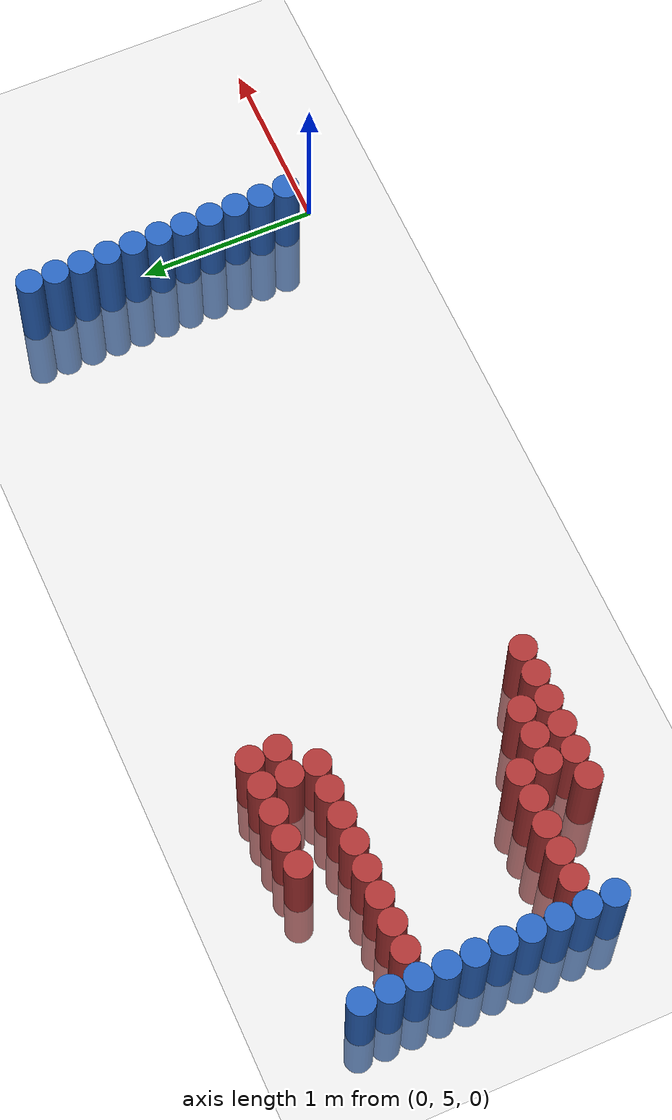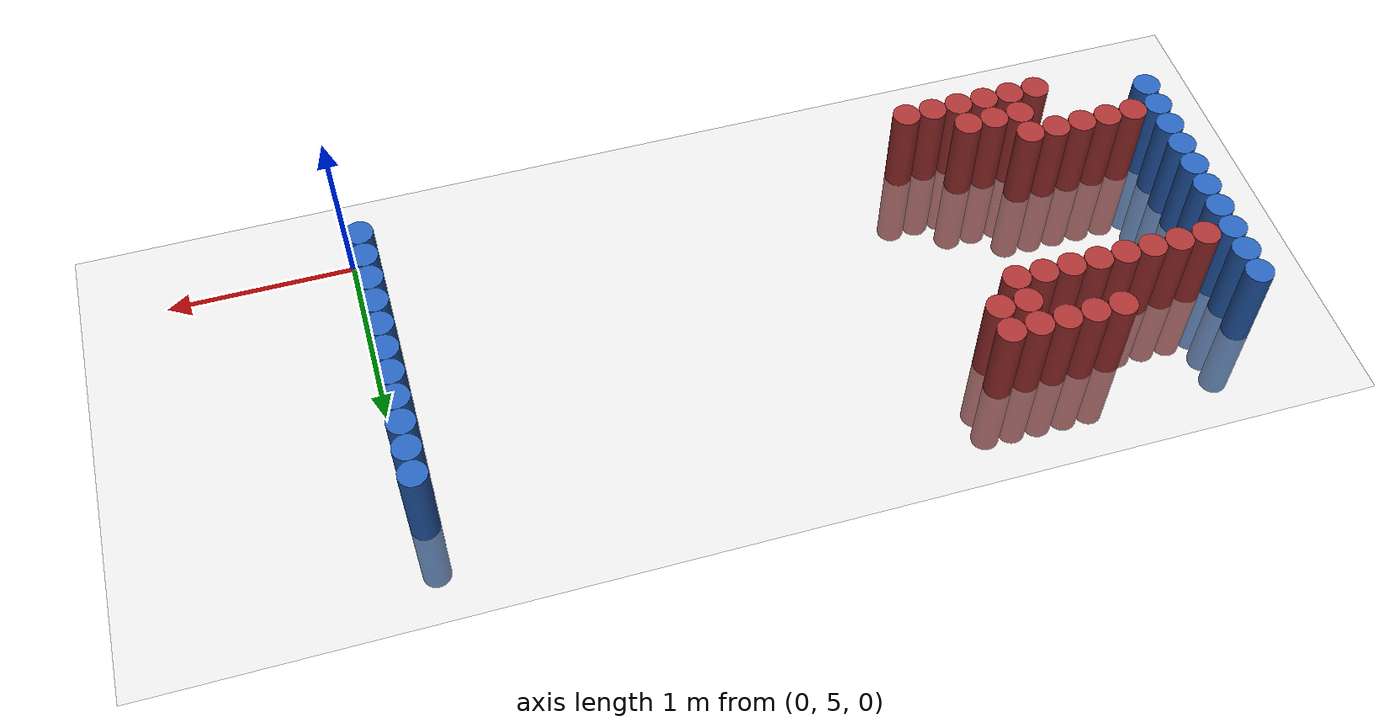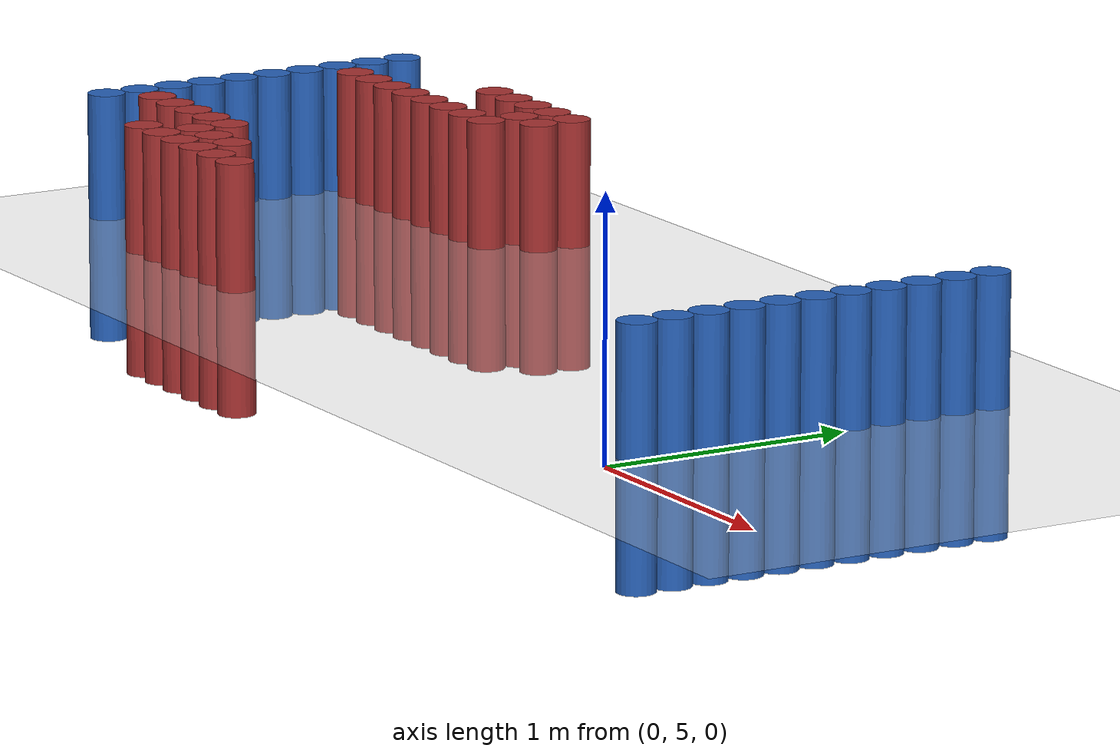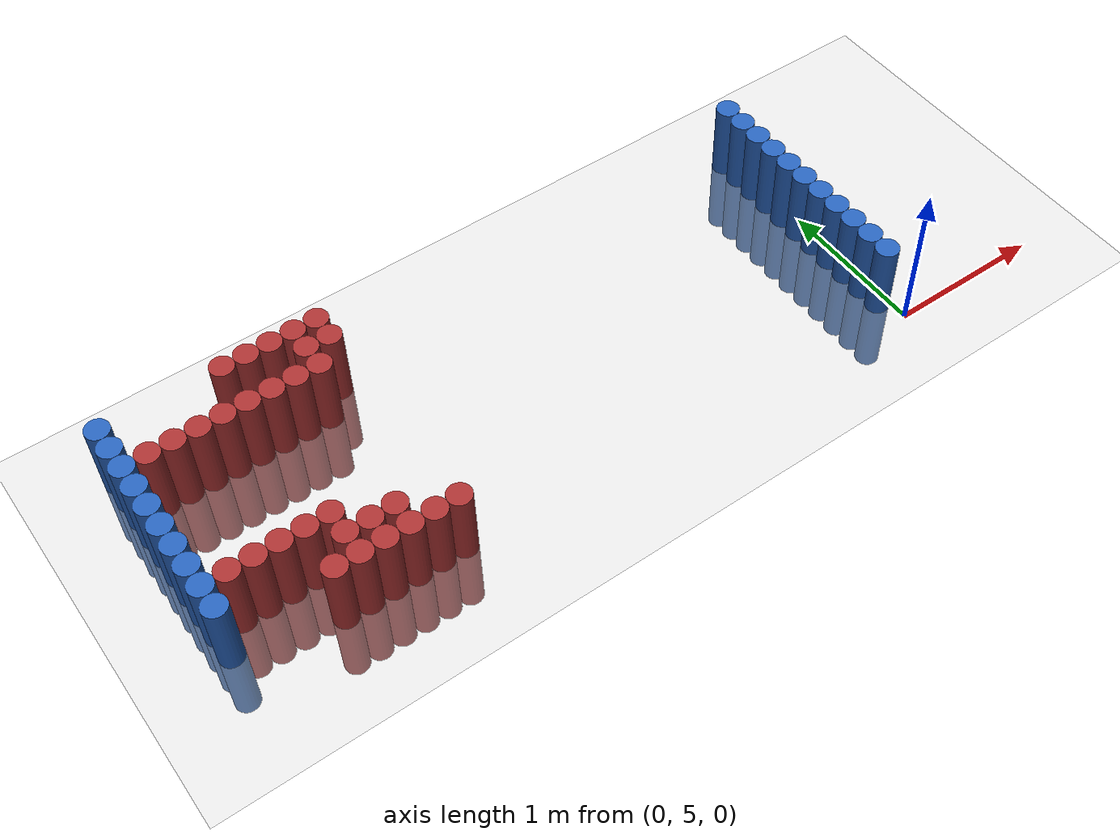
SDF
<sdf version="1.6">
 <world name="default">
  <model name="ground_plane">
   <static>1</static>
   <link name="link">
    <collision name="collision">
     <geometry><plane><normal>0 0 1</normal><size>100 100</size></plane></geometry>
     <surface><friction><ode><mu>100</mu><mu2>50</mu2></ode></friction></surface>
    </collision>
    <visual name="visual">
     <cast_shadows>0</cast_shadows>
     <geometry><plane><normal>0 0 1</normal><size>100 100</size></plane></geometry>
     <material>
      <script><uri>file://media/materials/scripts/gazebo.material</uri><name>Gazebo/Grey</name></script>
     </material>
    </visual>
   </link>
  </model>
  <model name="unit_cylinder_97">
   <static>1</static>
   <pose>-4.425000 5.325000 0.000000 0.000000 0.000000 0.000000</pose>
   <link name="link">
    <inertial>
     <mass>1</mass>
     <inertia><ixx>0.145833</ixx><ixy>0</ixy><ixz>0</ixz><iyy>0.145833</iyy><iyz>0</iyz><izz>0.125</izz></inertia>
    </inertial>
    <collision name="collision">
     <geometry><cylinder><radius>0.075000</radius><length>1</length></cylinder></geometry>
    </collision>
    <visual name="visual">
     <geometry><cylinder><radius>0.075000</radius><length>1</length></cylinder></geometry>
     <material>
      <ambient>0.152000 0.379000 0.720000 1</ambient>
      <diffuse>0.152000 0.379000 0.720000 1</diffuse>
     </material>
     <material>
      <script><name>Gazebo/Grey</name><uri>file://media/materials/scripts/gazebo.material</uri></script>
     </material>
    </visual>
   </link>
  </model>
  <model name="unit_cylinder_98">
   <static>1</static>
   <pose>-4.425000 5.475000 0.000000 0.000000 0.000000 0.000000</pose>
   <link name="link">
    <inertial>
     <mass>1</mass>
     <inertia><ixx>0.145833</ixx><ixy>0</ixy><ixz>0</ixz><iyy>0.145833</iyy><iyz>0</iyz><izz>0.125</izz></inertia>
    </inertial>
    <collision name="collision">
     <geometry><cylinder><radius>0.075000</radius><length>1</length></cylinder></geometry>
    </collision>
    <visual name="visual">
     <geometry><cylinder><radius>0.075000</radius><length>1</length></cylinder></geometry>
     <material>
      <ambient>0.152000 0.379000 0.720000 1</ambient>
      <diffuse>0.152000 0.379000 0.720000 1</diffuse>
     </material>
     <material>
      <script><name>Gazebo/Grey</name><uri>file://media/materials/scripts/gazebo.material</uri></script>
     </material>
    </visual>
   </link>
  </model>
  <model name="unit_cylinder_99">
   <static>1</static>
   <pose>-4.425000 5.625000 0.000000 0.000000 0.000000 0.000000</pose>
   <link name="link">
    <inertial>
     <mass>1</mass>
     <inertia><ixx>0.145833</ixx><ixy>0</ixy><ixz>0</ixz><iyy>0.145833</iyy><iyz>0</iyz><izz>0.125</izz></inertia>
    </inertial>
    <collision name="collision">
     <geometry><cylinder><radius>0.075000</radius><length>1</length></cylinder></geometry>
    </collision>
    <visual name="visual">
     <geometry><cylinder><radius>0.075000</radius><length>1</length></cylinder></geometry>
     <material>
      <ambient>0.152000 0.379000 0.720000 1</ambient>
      <diffuse>0.152000 0.379000 0.720000 1</diffuse>
     </material>
     <material>
      <script><name>Gazebo/Grey</name><uri>file://media/materials/scripts/gazebo.material</uri></script>
     </material>
    </visual>
   </link>
  </model>
  <model name="unit_cylinder_100">
   <static>1</static>
   <pose>-4.425000 5.775000 0.000000 0.000000 0.000000 0.000000</pose>
   <link name="link">
    <inertial>
     <mass>1</mass>
     <inertia><ixx>0.145833</ixx><ixy>0</ixy><ixz>0</ixz><iyy>0.145833</iyy><iyz>0</iyz><izz>0.125</izz></inertia>
    </inertial>
    <collision name="collision">
     <geometry><cylinder><radius>0.075000</radius><length>1</length></cylinder></geometry>
    </collision>
    <visual name="visual">
     <geometry><cylinder><radius>0.075000</radius><length>1</length></cylinder></geometry>
     <material>
      <ambient>0.152000 0.379000 0.720000 1</ambient>
      <diffuse>0.152000 0.379000 0.720000 1</diffuse>
     </material>
     <material>
      <script><name>Gazebo/Grey</name><uri>file://media/materials/scripts/gazebo.material</uri></script>
     </material>
    </visual>
   </link>
  </model>
  <model name="unit_cylinder_101">
   <static>1</static>
   <pose>-4.425000 5.925000 0.000000 0.000000 0.000000 0.000000</pose>
   <link name="link">
    <inertial>
     <mass>1</mass>
     <inertia><ixx>0.145833</ixx><ixy>0</ixy><ixz>0</ixz><iyy>0.145833</iyy><iyz>0</iyz><izz>0.125</izz></inertia>
    </inertial>
    <collision name="collision">
     <geometry><cylinder><radius>0.075000</radius><length>1</length></cylinder></geometry>
    </collision>
    <visual name="visual">
     <geometry><cylinder><radius>0.075000</radius><length>1</length></cylinder></geometry>
     <material>
      <ambient>0.152000 0.379000 0.720000 1</ambient>
      <diffuse>0.152000 0.379000 0.720000 1</diffuse>
     </material>
     <material>
      <script><name>Gazebo/Grey</name><uri>file://media/materials/scripts/gazebo.material</uri></script>
     </material>
    </visual>
   </link>
  </model>
  <model name="unit_cylinder_102">
   <static>1</static>
   <pose>-4.425000 6.075000 0.000000 0.000000 0.000000 0.000000</pose>
   <link name="link">
    <inertial>
     <mass>1</mass>
     <inertia><ixx>0.145833</ixx><ixy>0</ixy><ixz>0</ixz><iyy>0.145833</iyy><iyz>0</iyz><izz>0.125</izz></inertia>
    </inertial>
    <collision name="collision">
     <geometry><cylinder><radius>0.075000</radius><length>1</length></cylinder></geometry>
    </collision>
    <visual name="visual">
     <geometry><cylinder><radius>0.075000</radius><length>1</length></cylinder></geometry>
     <material>
      <ambient>0.152000 0.379000 0.720000 1</ambient>
      <diffuse>0.152000 0.379000 0.720000 1</diffuse>
     </material>
     <material>
      <script><name>Gazebo/Grey</name><uri>file://media/materials/scripts/gazebo.material</uri></script>
     </material>
    </visual>
   </link>
  </model>
  <model name="unit_cylinder_103">
   <static>1</static>
   <pose>-4.425000 6.225000 0.000000 0.000000 0.000000 0.000000</pose>
   <link name="link">
    <inertial>
     <mass>1</mass>
     <inertia><ixx>0.145833</ixx><ixy>0</ixy><ixz>0</ixz><iyy>0.145833</iyy><iyz>0</iyz><izz>0.125</izz></inertia>
    </inertial>
    <collision name="collision">
     <geometry><cylinder><radius>0.075000</radius><length>1</length></cylinder></geometry>
    </collision>
    <visual name="visual">
     <geometry><cylinder><radius>0.075000</radius><length>1</length></cylinder></geometry>
     <material>
      <ambient>0.152000 0.379000 0.720000 1</ambient>
      <diffuse>0.152000 0.379000 0.720000 1</diffuse>
     </material>
     <material>
      <script><name>Gazebo/Grey</name><uri>file://media/materials/scripts/gazebo.material</uri></script>
     </material>
    </visual>
   </link>
  </model>
  <model name="unit_cylinder_104">
   <static>1</static>
   <pose>-4.425000 6.375000 0.000000 0.000000 0.000000 0.000000</pose>
   <link name="link">
    <inertial>
     <mass>1</mass>
     <inertia><ixx>0.145833</ixx><ixy>0</ixy><ixz>0</ixz><iyy>0.145833</iyy><iyz>0</iyz><izz>0.125</izz></inertia>
    </inertial>
    <collision name="collision">
     <geometry><cylinder><radius>0.075000</radius><length>1</length></cylinder></geometry>
    </collision>
    <visual name="visual">
     <geometry><cylinder><radius>0.075000</radius><length>1</length></cylinder></geometry>
     <material>
      <ambient>0.152000 0.379000 0.720000 1</ambient>
      <diffuse>0.152000 0.379000 0.720000 1</diffuse>
     </material>
     <material>
      <script><name>Gazebo/Grey</name><uri>file://media/materials/scripts/gazebo.material</uri></script>
     </material>
    </visual>
   </link>
  </model>
  <model name="unit_cylinder_105">
   <static>1</static>
   <pose>-4.425000 6.525000 0.000000 0.000000 0.000000 0.000000</pose>
   <link name="link">
    <inertial>
     <mass>1</mass>
     <inertia><ixx>0.145833</ixx><ixy>0</ixy><ixz>0</ixz><iyy>0.145833</iyy><iyz>0</iyz><izz>0.125</izz></inertia>
    </inertial>
    <collision name="collision">
     <geometry><cylinder><radius>0.075000</radius><length>1</length></cylinder></geometry>
    </collision>
    <visual name="visual">
     <geometry><cylinder><radius>0.075000</radius><length>1</length></cylinder></geometry>
     <material>
      <ambient>0.152000 0.379000 0.720000 1</ambient>
      <diffuse>0.152000 0.379000 0.720000 1</diffuse>
     </material>
     <material>
      <script><name>Gazebo/Grey</name><uri>file://media/materials/scripts/gazebo.material</uri></script>
     </material>
    </visual>
   </link>
  </model>
  <model name="unit_cylinder_106">
   <static>1</static>
   <pose>-4.425000 6.675000 0.000000 0.000000 0.000000 0.000000</pose>
   <link name="link">
    <inertial>
     <mass>1</mass>
     <inertia><ixx>0.145833</ixx><ixy>0</ixy><ixz>0</ixz><iyy>0.145833</iyy><iyz>0</iyz><izz>0.125</izz></inertia>
    </inertial>
    <collision name="collision">
     <geometry><cylinder><radius>0.075000</radius><length>1</length></cylinder></geometry>
    </collision>
    <visual name="visual">
     <geometry><cylinder><radius>0.075000</radius><length>1</length></cylinder></geometry>
     <material>
      <ambient>0.152000 0.379000 0.720000 1</ambient>
      <diffuse>0.152000 0.379000 0.720000 1</diffuse>
     </material>
     <material>
      <script><name>Gazebo/Grey</name><uri>file://media/materials/scripts/gazebo.material</uri></script>
     </material>
    </visual>
   </link>
  </model>
  <model name="unit_cylinder_127">
   <static>1</static>
   <pose>-4.275000 5.475000 0.000000 0.000000 0.000000 0.000000</pose>
   <link name="link">
    <inertial>
     <mass>1</mass>
     <inertia><ixx>0.145833</ixx><ixy>0</ixy><ixz>0</ixz><iyy>0.145833</iyy><iyz>0</iyz><izz>0.125</izz></inertia>
    </inertial>
    <collision name="collision">
     <geometry><cylinder><radius>0.075000</radius><length>1</length></cylinder></geometry>
    </collision>
    <visual name="visual">
     <geometry><cylinder><radius>0.075000</radius><length>1</length></cylinder></geometry>
     <material>
      <ambient>0.648000 0.192000 0.192000 1</ambient>
      <diffuse>0.648000 0.192000 0.192000 1</diffuse>
     </material>
     <material>
      <script><name>Gazebo/Grey</name><uri>file://media/materials/scripts/gazebo.material</uri></script>
     </material>
    </visual>
   </link>
  </model>
  <model name="unit_cylinder_128">
   <static>1</static>
   <pose>-4.275000 6.375000 0.000000 0.000000 0.000000 0.000000</pose>
   <link name="link">
    <inertial>
     <mass>1</mass>
     <inertia><ixx>0.145833</ixx><ixy>0</ixy><ixz>0</ixz><iyy>0.145833</iyy><iyz>0</iyz><izz>0.125</izz></inertia>
    </inertial>
    <collision name="collision">
     <geometry><cylinder><radius>0.075000</radius><length>1</length></cylinder></geometry>
    </collision>
    <visual name="visual">
     <geometry><cylinder><radius>0.075000</radius><length>1</length></cylinder></geometry>
     <material>
      <ambient>0.648000 0.192000 0.192000 1</ambient>
      <diffuse>0.648000 0.192000 0.192000 1</diffuse>
     </material>
     <material>
      <script><name>Gazebo/Grey</name><uri>file://media/materials/scripts/gazebo.material</uri></script>
     </material>
    </visual>
   </link>
  </model>
  <model name="unit_cylinder_131">
   <static>1</static>
   <pose>-4.125000 5.475000 0.000000 0.000000 0.000000 0.000000</pose>
   <link name="link">
    <inertial>
     <mass>1</mass>
     <inertia><ixx>0.145833</ixx><ixy>0</ixy><ixz>0</ixz><iyy>0.145833</iyy><iyz>0</iyz><izz>0.125</izz></inertia>
    </inertial>
    <collision name="collision">
     <geometry><cylinder><radius>0.075000</radius><length>1</length></cylinder></geometry>
    </collision>
    <visual name="visual">
     <geometry><cylinder><radius>0.075000</radius><length>1</length></cylinder></geometry>
     <material>
      <ambient>0.648000 0.192000 0.192000 1</ambient>
      <diffuse>0.648000 0.192000 0.192000 1</diffuse>
     </material>
     <material>
      <script><name>Gazebo/Grey</name><uri>file://media/materials/scripts/gazebo.material</uri></script>
     </material>
    </visual>
   </link>
  </model>
  <model name="unit_cylinder_132">
   <static>1</static>
   <pose>-4.125000 6.375000 0.000000 0.000000 0.000000 0.000000</pose>
   <link name="link">
    <inertial>
     <mass>1</mass>
     <inertia><ixx>0.145833</ixx><ixy>0</ixy><ixz>0</ixz><iyy>0.145833</iyy><iyz>0</iyz><izz>0.125</izz></inertia>
    </inertial>
    <collision name="collision">
     <geometry><cylinder><radius>0.075000</radius><length>1</length></cylinder></geometry>
    </collision>
    <visual name="visual">
     <geometry><cylinder><radius>0.075000</radius><length>1</length></cylinder></geometry>
     <material>
      <ambient>0.648000 0.192000 0.192000 1</ambient>
      <diffuse>0.648000 0.192000 0.192000 1</diffuse>
     </material>
     <material>
      <script><name>Gazebo/Grey</name><uri>file://media/materials/scripts/gazebo.material</uri></script>
     </material>
    </visual>
   </link>
  </model>
  <model name="unit_cylinder_136">
   <static>1</static>
   <pose>-3.975000 5.475000 0.000000 0.000000 0.000000 0.000000</pose>
   <link name="link">
    <inertial>
     <mass>1</mass>
     <inertia><ixx>0.145833</ixx><ixy>0</ixy><ixz>0</ixz><iyy>0.145833</iyy><iyz>0</iyz><izz>0.125</izz></inertia>
    </inertial>
    <collision name="collision">
     <geometry><cylinder><radius>0.075000</radius><length>1</length></cylinder></geometry>
    </collision>
    <visual name="visual">
     <geometry><cylinder><radius>0.075000</radius><length>1</length></cylinder></geometry>
     <material>
      <ambient>0.648000 0.192000 0.192000 1</ambient>
      <diffuse>0.648000 0.192000 0.192000 1</diffuse>
     </material>
     <material>
      <script><name>Gazebo/Grey</name><uri>file://media/materials/scripts/gazebo.material</uri></script>
     </material>
    </visual>
   </link>
  </model>
  <model name="unit_cylinder_137">
   <static>1</static>
   <pose>-3.975000 6.375000 0.000000 0.000000 0.000000 0.000000</pose>
   <link name="link">
    <inertial>
     <mass>1</mass>
     <inertia><ixx>0.145833</ixx><ixy>0</ixy><ixz>0</ixz><iyy>0.145833</iyy><iyz>0</iyz><izz>0.125</izz></inertia>
    </inertial>
    <collision name="collision">
     <geometry><cylinder><radius>0.075000</radius><length>1</length></cylinder></geometry>
    </collision>
    <visual name="visual">
     <geometry><cylinder><radius>0.075000</radius><length>1</length></cylinder></geometry>
     <material>
      <ambient>0.648000 0.192000 0.192000 1</ambient>
      <diffuse>0.648000 0.192000 0.192000 1</diffuse>
     </material>
     <material>
      <script><name>Gazebo/Grey</name><uri>file://media/materials/scripts/gazebo.material</uri></script>
     </material>
    </visual>
   </link>
  </model>
  <model name="unit_cylinder_140">
   <static>1</static>
   <pose>-3.825000 5.175000 0.000000 0.000000 0.000000 0.000000</pose>
   <link name="link">
    <inertial>
     <mass>1</mass>
     <inertia><ixx>0.145833</ixx><ixy>0</ixy><ixz>0</ixz><iyy>0.145833</iyy><iyz>0</iyz><izz>0.125</izz></inertia>
    </inertial>
    <collision name="collision">
     <geometry><cylinder><radius>0.075000</radius><length>1</length></cylinder></geometry>
    </collision>
    <visual name="visual">
     <geometry><cylinder><radius>0.075000</radius><length>1</length></cylinder></geometry>
     <material>
      <ambient>0.648000 0.192000 0.192000 1</ambient>
      <diffuse>0.648000 0.192000 0.192000 1</diffuse>
     </material>
     <material>
      <script><name>Gazebo/Grey</name><uri>file://media/materials/scripts/gazebo.material</uri></script>
     </material>
    </visual>
   </link>
  </model>
  <model name="unit_cylinder_141">
   <static>1</static>
   <pose>-3.825000 5.475000 0.000000 0.000000 0.000000 0.000000</pose>
   <link name="link">
    <inertial>
     <mass>1</mass>
     <inertia><ixx>0.145833</ixx><ixy>0</ixy><ixz>0</ixz><iyy>0.145833</iyy><iyz>0</iyz><izz>0.125</izz></inertia>
    </inertial>
    <collision name="collision">
     <geometry><cylinder><radius>0.075000</radius><length>1</length></cylinder></geometry>
    </collision>
    <visual name="visual">
     <geometry><cylinder><radius>0.075000</radius><length>1</length></cylinder></geometry>
     <material>
      <ambient>0.648000 0.192000 0.192000 1</ambient>
      <diffuse>0.648000 0.192000 0.192000 1</diffuse>
     </material>
     <material>
      <script><name>Gazebo/Grey</name><uri>file://media/materials/scripts/gazebo.material</uri></script>
     </material>
    </visual>
   </link>
  </model>
  <model name="unit_cylinder_142">
   <static>1</static>
   <pose>-3.825000 6.375000 0.000000 0.000000 0.000000 0.000000</pose>
   <link name="link">
    <inertial>
     <mass>1</mass>
     <inertia><ixx>0.145833</ixx><ixy>0</ixy><ixz>0</ixz><iyy>0.145833</iyy><iyz>0</iyz><izz>0.125</izz></inertia>
    </inertial>
    <collision name="collision">
     <geometry><cylinder><radius>0.075000</radius><length>1</length></cylinder></geometry>
    </collision>
    <visual name="visual">
     <geometry><cylinder><radius>0.075000</radius><length>1</length></cylinder></geometry>
     <material>
      <ambient>0.648000 0.192000 0.192000 1</ambient>
      <diffuse>0.648000 0.192000 0.192000 1</diffuse>
     </material>
     <material>
      <script><name>Gazebo/Grey</name><uri>file://media/materials/scripts/gazebo.material</uri></script>
     </material>
    </visual>
   </link>
  </model>
  <model name="unit_cylinder_145">
   <static>1</static>
   <pose>-3.675000 5.175000 0.000000 0.000000 0.000000 0.000000</pose>
   <link name="link">
    <inertial>
     <mass>1</mass>
     <inertia><ixx>0.145833</ixx><ixy>0</ixy><ixz>0</ixz><iyy>0.145833</iyy><iyz>0</iyz><izz>0.125</izz></inertia>
    </inertial>
    <collision name="collision">
     <geometry><cylinder><radius>0.075000</radius><length>1</length></cylinder></geometry>
    </collision>
    <visual name="visual">
     <geometry><cylinder><radius>0.075000</radius><length>1</length></cylinder></geometry>
     <material>
      <ambient>0.648000 0.192000 0.192000 1</ambient>
      <diffuse>0.648000 0.192000 0.192000 1</diffuse>
     </material>
     <material>
      <script><name>Gazebo/Grey</name><uri>file://media/materials/scripts/gazebo.material</uri></script>
     </material>
    </visual>
   </link>
  </model>
  <model name="unit_cylinder_146">
   <static>1</static>
   <pose>-3.675000 5.325000 0.000000 0.000000 0.000000 0.000000</pose>
   <link name="link">
    <inertial>
     <mass>1</mass>
     <inertia><ixx>0.145833</ixx><ixy>0</ixy><ixz>0</ixz><iyy>0.145833</iyy><iyz>0</iyz><izz>0.125</izz></inertia>
    </inertial>
    <collision name="collision">
     <geometry><cylinder><radius>0.075000</radius><length>1</length></cylinder></geometry>
    </collision>
    <visual name="visual">
     <geometry><cylinder><radius>0.075000</radius><length>1</length></cylinder></geometry>
     <material>
      <ambient>0.648000 0.192000 0.192000 1</ambient>
      <diffuse>0.648000 0.192000 0.192000 1</diffuse>
     </material>
     <material>
      <script><name>Gazebo/Grey</name><uri>file://media/materials/scripts/gazebo.material</uri></script>
     </material>
    </visual>
   </link>
  </model>
  <model name="unit_cylinder_147">
   <static>1</static>
   <pose>-3.675000 5.475000 0.000000 0.000000 0.000000 0.000000</pose>
   <link name="link">
    <inertial>
     <mass>1</mass>
     <inertia><ixx>0.145833</ixx><ixy>0</ixy><ixz>0</ixz><iyy>0.145833</iyy><iyz>0</iyz><izz>0.125</izz></inertia>
    </inertial>
    <collision name="collision">
     <geometry><cylinder><radius>0.075000</radius><length>1</length></cylinder></geometry>
    </collision>
    <visual name="visual">
     <geometry><cylinder><radius>0.075000</radius><length>1</length></cylinder></geometry>
     <material>
      <ambient>0.648000 0.192000 0.192000 1</ambient>
      <diffuse>0.648000 0.192000 0.192000 1</diffuse>
     </material>
     <material>
      <script><name>Gazebo/Grey</name><uri>file://media/materials/scripts/gazebo.material</uri></script>
     </material>
    </visual>
   </link>
  </model>
  <model name="unit_cylinder_148">
   <static>1</static>
   <pose>-3.675000 6.375000 0.000000 0.000000 0.000000 0.000000</pose>
   <link name="link">
    <inertial>
     <mass>1</mass>
     <inertia><ixx>0.145833</ixx><ixy>0</ixy><ixz>0</ixz><iyy>0.145833</iyy><iyz>0</iyz><izz>0.125</izz></inertia>
    </inertial>
    <collision name="collision">
     <geometry><cylinder><radius>0.075000</radius><length>1</length></cylinder></geometry>
    </collision>
    <visual name="visual">
     <geometry><cylinder><radius>0.075000</radius><length>1</length></cylinder></geometry>
     <material>
      <ambient>0.648000 0.192000 0.192000 1</ambient>
      <diffuse>0.648000 0.192000 0.192000 1</diffuse>
     </material>
     <material>
      <script><name>Gazebo/Grey</name><uri>file://media/materials/scripts/gazebo.material</uri></script>
     </material>
    </visual>
   </link>
  </model>
  <model name="unit_cylinder_149">
   <static>1</static>
   <pose>-3.675000 6.675000 0.000000 0.000000 0.000000 0.000000</pose>
   <link name="link">
    <inertial>
     <mass>1</mass>
     <inertia><ixx>0.145833</ixx><ixy>0</ixy><ixz>0</ixz><iyy>0.145833</iyy><iyz>0</iyz><izz>0.125</izz></inertia>
    </inertial>
    <collision name="collision">
     <geometry><cylinder><radius>0.075000</radius><length>1</length></cylinder></geometry>
    </collision>
    <visual name="visual">
     <geometry><cylinder><radius>0.075000</radius><length>1</length></cylinder></geometry>
     <material>
      <ambient>0.648000 0.192000 0.192000 1</ambient>
      <diffuse>0.648000 0.192000 0.192000 1</diffuse>
     </material>
     <material>
      <script><name>Gazebo/Grey</name><uri>file://media/materials/scripts/gazebo.material</uri></script>
     </material>
    </visual>
   </link>
  </model>
  <model name="unit_cylinder_156">
   <static>1</static>
   <pose>-3.525000 5.175000 0.000000 0.000000 0.000000 0.000000</pose>
   <link name="link">
    <inertial>
     <mass>1</mass>
     <inertia><ixx>0.145833</ixx><ixy>0</ixy><ixz>0</ixz><iyy>0.145833</iyy><iyz>0</iyz><izz>0.125</izz></inertia>
    </inertial>
    <collision name="collision">
     <geometry><cylinder><radius>0.075000</radius><length>1</length></cylinder></geometry>
    </collision>
    <visual name="visual">
     <geometry><cylinder><radius>0.075000</radius><length>1</length></cylinder></geometry>
     <material>
      <ambient>0.648000 0.192000 0.192000 1</ambient>
      <diffuse>0.648000 0.192000 0.192000 1</diffuse>
     </material>
     <material>
      <script><name>Gazebo/Grey</name><uri>file://media/materials/scripts/gazebo.material</uri></script>
     </material>
    </visual>
   </link>
  </model>
  <model name="unit_cylinder_157">
   <static>1</static>
   <pose>-3.525000 5.325000 0.000000 0.000000 0.000000 0.000000</pose>
   <link name="link">
    <inertial>
     <mass>1</mass>
     <inertia><ixx>0.145833</ixx><ixy>0</ixy><ixz>0</ixz><iyy>0.145833</iyy><iyz>0</iyz><izz>0.125</izz></inertia>
    </inertial>
    <collision name="collision">
     <geometry><cylinder><radius>0.075000</radius><length>1</length></cylinder></geometry>
    </collision>
    <visual name="visual">
     <geometry><cylinder><radius>0.075000</radius><length>1</length></cylinder></geometry>
     <material>
      <ambient>0.648000 0.192000 0.192000 1</ambient>
      <diffuse>0.648000 0.192000 0.192000 1</diffuse>
     </material>
     <material>
      <script><name>Gazebo/Grey</name><uri>file://media/materials/scripts/gazebo.material</uri></script>
     </material>
    </visual>
   </link>
  </model>
  <model name="unit_cylinder_158">
   <static>1</static>
   <pose>-3.525000 6.375000 0.000000 0.000000 0.000000 0.000000</pose>
   <link name="link">
    <inertial>
     <mass>1</mass>
     <inertia><ixx>0.145833</ixx><ixy>0</ixy><ixz>0</ixz><iyy>0.145833</iyy><iyz>0</iyz><izz>0.125</izz></inertia>
    </inertial>
    <collision name="collision">
     <geometry><cylinder><radius>0.075000</radius><length>1</length></cylinder></geometry>
    </collision>
    <visual name="visual">
     <geometry><cylinder><radius>0.075000</radius><length>1</length></cylinder></geometry>
     <material>
      <ambient>0.648000 0.192000 0.192000 1</ambient>
      <diffuse>0.648000 0.192000 0.192000 1</diffuse>
     </material>
     <material>
      <script><name>Gazebo/Grey</name><uri>file://media/materials/scripts/gazebo.material</uri></script>
     </material>
    </visual>
   </link>
  </model>
  <model name="unit_cylinder_159">
   <static>1</static>
   <pose>-3.525000 6.675000 0.000000 0.000000 0.000000 0.000000</pose>
   <link name="link">
    <inertial>
     <mass>1</mass>
     <inertia><ixx>0.145833</ixx><ixy>0</ixy><ixz>0</ixz><iyy>0.145833</iyy><iyz>0</iyz><izz>0.125</izz></inertia>
    </inertial>
    <collision name="collision">
     <geometry><cylinder><radius>0.075000</radius><length>1</length></cylinder></geometry>
    </collision>
    <visual name="visual">
     <geometry><cylinder><radius>0.075000</radius><length>1</length></cylinder></geometry>
     <material>
      <ambient>0.648000 0.192000 0.192000 1</ambient>
      <diffuse>0.648000 0.192000 0.192000 1</diffuse>
     </material>
     <material>
      <script><name>Gazebo/Grey</name><uri>file://media/materials/scripts/gazebo.material</uri></script>
     </material>
    </visual>
   </link>
  </model>
  <model name="unit_cylinder_167">
   <static>1</static>
   <pose>-3.375000 5.175000 0.000000 0.000000 0.000000 0.000000</pose>
   <link name="link">
    <inertial>
     <mass>1</mass>
     <inertia><ixx>0.145833</ixx><ixy>0</ixy><ixz>0</ixz><iyy>0.145833</iyy><iyz>0</iyz><izz>0.125</izz></inertia>
    </inertial>
    <collision name="collision">
     <geometry><cylinder><radius>0.075000</radius><length>1</length></cylinder></geometry>
    </collision>
    <visual name="visual">
     <geometry><cylinder><radius>0.075000</radius><length>1</length></cylinder></geometry>
     <material>
      <ambient>0.648000 0.192000 0.192000 1</ambient>
      <diffuse>0.648000 0.192000 0.192000 1</diffuse>
     </material>
     <material>
      <script><name>Gazebo/Grey</name><uri>file://media/materials/scripts/gazebo.material</uri></script>
     </material>
    </visual>
   </link>
  </model>
  <model name="unit_cylinder_168">
   <static>1</static>
   <pose>-3.375000 5.325000 0.000000 0.000000 0.000000 0.000000</pose>
   <link name="link">
    <inertial>
     <mass>1</mass>
     <inertia><ixx>0.145833</ixx><ixy>0</ixy><ixz>0</ixz><iyy>0.145833</iyy><iyz>0</iyz><izz>0.125</izz></inertia>
    </inertial>
    <collision name="collision">
     <geometry><cylinder><radius>0.075000</radius><length>1</length></cylinder></geometry>
    </collision>
    <visual name="visual">
     <geometry><cylinder><radius>0.075000</radius><length>1</length></cylinder></geometry>
     <material>
      <ambient>0.648000 0.192000 0.192000 1</ambient>
      <diffuse>0.648000 0.192000 0.192000 1</diffuse>
     </material>
     <material>
      <script><name>Gazebo/Grey</name><uri>file://media/materials/scripts/gazebo.material</uri></script>
     </material>
    </visual>
   </link>
  </model>
  <model name="unit_cylinder_169">
   <static>1</static>
   <pose>-3.375000 6.375000 0.000000 0.000000 0.000000 0.000000</pose>
   <link name="link">
    <inertial>
     <mass>1</mass>
     <inertia><ixx>0.145833</ixx><ixy>0</ixy><ixz>0</ixz><iyy>0.145833</iyy><iyz>0</iyz><izz>0.125</izz></inertia>
    </inertial>
    <collision name="collision">
     <geometry><cylinder><radius>0.075000</radius><length>1</length></cylinder></geometry>
    </collision>
    <visual name="visual">
     <geometry><cylinder><radius>0.075000</radius><length>1</length></cylinder></geometry>
     <material>
      <ambient>0.648000 0.192000 0.192000 1</ambient>
      <diffuse>0.648000 0.192000 0.192000 1</diffuse>
     </material>
     <material>
      <script><name>Gazebo/Grey</name><uri>file://media/materials/scripts/gazebo.material</uri></script>
     </material>
    </visual>
   </link>
  </model>
  <model name="unit_cylinder_170">
   <static>1</static>
   <pose>-3.375000 6.675000 0.000000 0.000000 0.000000 0.000000</pose>
   <link name="link">
    <inertial>
     <mass>1</mass>
     <inertia><ixx>0.145833</ixx><ixy>0</ixy><ixz>0</ixz><iyy>0.145833</iyy><iyz>0</iyz><izz>0.125</izz></inertia>
    </inertial>
    <collision name="collision">
     <geometry><cylinder><radius>0.075000</radius><length>1</length></cylinder></geometry>
    </collision>
    <visual name="visual">
     <geometry><cylinder><radius>0.075000</radius><length>1</length></cylinder></geometry>
     <material>
      <ambient>0.648000 0.192000 0.192000 1</ambient>
      <diffuse>0.648000 0.192000 0.192000 1</diffuse>
     </material>
     <material>
      <script><name>Gazebo/Grey</name><uri>file://media/materials/scripts/gazebo.material</uri></script>
     </material>
    </visual>
   </link>
  </model>
  <model name="unit_cylinder_174">
   <static>1</static>
   <pose>-3.225000 5.175000 0.000000 0.000000 0.000000 0.000000</pose>
   <link name="link">
    <inertial>
     <mass>1</mass>
     <inertia><ixx>0.145833</ixx><ixy>0</ixy><ixz>0</ixz><iyy>0.145833</iyy><iyz>0</iyz><izz>0.125</izz></inertia>
    </inertial>
    <collision name="collision">
     <geometry><cylinder><radius>0.075000</radius><length>1</length></cylinder></geometry>
    </collision>
    <visual name="visual">
     <geometry><cylinder><radius>0.075000</radius><length>1</length></cylinder></geometry>
     <material>
      <ambient>0.648000 0.192000 0.192000 1</ambient>
      <diffuse>0.648000 0.192000 0.192000 1</diffuse>
     </material>
     <material>
      <script><name>Gazebo/Grey</name><uri>file://media/materials/scripts/gazebo.material</uri></script>
     </material>
    </visual>
   </link>
  </model>
  <model name="unit_cylinder_175">
   <static>1</static>
   <pose>-3.225000 6.375000 0.000000 0.000000 0.000000 0.000000</pose>
   <link name="link">
    <inertial>
     <mass>1</mass>
     <inertia><ixx>0.145833</ixx><ixy>0</ixy><ixz>0</ixz><iyy>0.145833</iyy><iyz>0</iyz><izz>0.125</izz></inertia>
    </inertial>
    <collision name="collision">
     <geometry><cylinder><radius>0.075000</radius><length>1</length></cylinder></geometry>
    </collision>
    <visual name="visual">
     <geometry><cylinder><radius>0.075000</radius><length>1</length></cylinder></geometry>
     <material>
      <ambient>0.648000 0.192000 0.192000 1</ambient>
      <diffuse>0.648000 0.192000 0.192000 1</diffuse>
     </material>
     <material>
      <script><name>Gazebo/Grey</name><uri>file://media/materials/scripts/gazebo.material</uri></script>
     </material>
    </visual>
   </link>
  </model>
  <model name="unit_cylinder_176">
   <static>1</static>
   <pose>-3.225000 6.525000 0.000000 0.000000 0.000000 0.000000</pose>
   <link name="link">
    <inertial>
     <mass>1</mass>
     <inertia><ixx>0.145833</ixx><ixy>0</ixy><ixz>0</ixz><iyy>0.145833</iyy><iyz>0</iyz><izz>0.125</izz></inertia>
    </inertial>
    <collision name="collision">
     <geometry><cylinder><radius>0.075000</radius><length>1</length></cylinder></geometry>
    </collision>
    <visual name="visual">
     <geometry><cylinder><radius>0.075000</radius><length>1</length></cylinder></geometry>
     <material>
      <ambient>0.648000 0.192000 0.192000 1</ambient>
      <diffuse>0.648000 0.192000 0.192000 1</diffuse>
     </material>
     <material>
      <script><name>Gazebo/Grey</name><uri>file://media/materials/scripts/gazebo.material</uri></script>
     </material>
    </visual>
   </link>
  </model>
  <model name="unit_cylinder_177">
   <static>1</static>
   <pose>-3.225000 6.675000 0.000000 0.000000 0.000000 0.000000</pose>
   <link name="link">
    <inertial>
     <mass>1</mass>
     <inertia><ixx>0.145833</ixx><ixy>0</ixy><ixz>0</ixz><iyy>0.145833</iyy><iyz>0</iyz><izz>0.125</izz></inertia>
    </inertial>
    <collision name="collision">
     <geometry><cylinder><radius>0.075000</radius><length>1</length></cylinder></geometry>
    </collision>
    <visual name="visual">
     <geometry><cylinder><radius>0.075000</radius><length>1</length></cylinder></geometry>
     <material>
      <ambient>0.648000 0.192000 0.192000 1</ambient>
      <diffuse>0.648000 0.192000 0.192000 1</diffuse>
     </material>
     <material>
      <script><name>Gazebo/Grey</name><uri>file://media/materials/scripts/gazebo.material</uri></script>
     </material>
    </visual>
   </link>
  </model>
  <model name="unit_cylinder_182">
   <static>1</static>
   <pose>-3.075000 5.175000 0.000000 0.000000 0.000000 0.000000</pose>
   <link name="link">
    <inertial>
     <mass>1</mass>
     <inertia><ixx>0.145833</ixx><ixy>0</ixy><ixz>0</ixz><iyy>0.145833</iyy><iyz>0</iyz><izz>0.125</izz></inertia>
    </inertial>
    <collision name="collision">
     <geometry><cylinder><radius>0.075000</radius><length>1</length></cylinder></geometry>
    </collision>
    <visual name="visual">
     <geometry><cylinder><radius>0.075000</radius><length>1</length></cylinder></geometry>
     <material>
      <ambient>0.648000 0.192000 0.192000 1</ambient>
      <diffuse>0.648000 0.192000 0.192000 1</diffuse>
     </material>
     <material>
      <script><name>Gazebo/Grey</name><uri>file://media/materials/scripts/gazebo.material</uri></script>
     </material>
    </visual>
   </link>
  </model>
  <model name="unit_cylinder_183">
   <static>1</static>
   <pose>-3.075000 6.525000 0.000000 0.000000 0.000000 0.000000</pose>
   <link name="link">
    <inertial>
     <mass>1</mass>
     <inertia><ixx>0.145833</ixx><ixy>0</ixy><ixz>0</ixz><iyy>0.145833</iyy><iyz>0</iyz><izz>0.125</izz></inertia>
    </inertial>
    <collision name="collision">
     <geometry><cylinder><radius>0.075000</radius><length>1</length></cylinder></geometry>
    </collision>
    <visual name="visual">
     <geometry><cylinder><radius>0.075000</radius><length>1</length></cylinder></geometry>
     <material>
      <ambient>0.648000 0.192000 0.192000 1</ambient>
      <diffuse>0.648000 0.192000 0.192000 1</diffuse>
     </material>
     <material>
      <script><name>Gazebo/Grey</name><uri>file://media/materials/scripts/gazebo.material</uri></script>
     </material>
    </visual>
   </link>
  </model>
  <model name="unit_cylinder_184">
   <static>1</static>
   <pose>-3.075000 6.675000 0.000000 0.000000 0.000000 0.000000</pose>
   <link name="link">
    <inertial>
     <mass>1</mass>
     <inertia><ixx>0.145833</ixx><ixy>0</ixy><ixz>0</ixz><iyy>0.145833</iyy><iyz>0</iyz><izz>0.125</izz></inertia>
    </inertial>
    <collision name="collision">
     <geometry><cylinder><radius>0.075000</radius><length>1</length></cylinder></geometry>
    </collision>
    <visual name="visual">
     <geometry><cylinder><radius>0.075000</radius><length>1</length></cylinder></geometry>
     <material>
      <ambient>0.648000 0.192000 0.192000 1</ambient>
      <diffuse>0.648000 0.192000 0.192000 1</diffuse>
     </material>
     <material>
      <script><name>Gazebo/Grey</name><uri>file://media/materials/scripts/gazebo.material</uri></script>
     </material>
    </visual>
   </link>
  </model>
  <model name="unit_cylinder_219">
   <static>1</static>
   <pose>-0.075000 5.175000 0.000000 0.000000 0.000000 0.000000</pose>
   <link name="link">
    <inertial>
     <mass>1</mass>
     <inertia><ixx>0.145833</ixx><ixy>0</ixy><ixz>0</ixz><iyy>0.145833</iyy><iyz>0</iyz><izz>0.125</izz></inertia>
    </inertial>
    <collision name="collision">
     <geometry><cylinder><radius>0.075000</radius><length>1</length></cylinder></geometry>
    </collision>
    <visual name="visual">
     <geometry><cylinder><radius>0.075000</radius><length>1</length></cylinder></geometry>
     <material>
      <ambient>0.152000 0.379000 0.720000 1</ambient>
      <diffuse>0.152000 0.379000 0.720000 1</diffuse>
     </material>
     <material>
      <script><name>Gazebo/Grey</name><uri>file://media/materials/scripts/gazebo.material</uri></script>
     </material>
    </visual>
   </link>
  </model>
  <model name="unit_cylinder_220">
   <static>1</static>
   <pose>-0.075000 5.325000 0.000000 0.000000 0.000000 0.000000</pose>
   <link name="link">
    <inertial>
     <mass>1</mass>
     <inertia><ixx>0.145833</ixx><ixy>0</ixy><ixz>0</ixz><iyy>0.145833</iyy><iyz>0</iyz><izz>0.125</izz></inertia>
    </inertial>
    <collision name="collision">
     <geometry><cylinder><radius>0.075000</radius><length>1</length></cylinder></geometry>
    </collision>
    <visual name="visual">
     <geometry><cylinder><radius>0.075000</radius><length>1</length></cylinder></geometry>
     <material>
      <ambient>0.152000 0.379000 0.720000 1</ambient>
      <diffuse>0.152000 0.379000 0.720000 1</diffuse>
     </material>
     <material>
      <script><name>Gazebo/Grey</name><uri>file://media/materials/scripts/gazebo.material</uri></script>
     </material>
    </visual>
   </link>
  </model>
  <model name="unit_cylinder_221">
   <static>1</static>
   <pose>-0.075000 5.475000 0.000000 0.000000 0.000000 0.000000</pose>
   <link name="link">
    <inertial>
     <mass>1</mass>
     <inertia><ixx>0.145833</ixx><ixy>0</ixy><ixz>0</ixz><iyy>0.145833</iyy><iyz>0</iyz><izz>0.125</izz></inertia>
    </inertial>
    <collision name="collision">
     <geometry><cylinder><radius>0.075000</radius><length>1</length></cylinder></geometry>
    </collision>
    <visual name="visual">
     <geometry><cylinder><radius>0.075000</radius><length>1</length></cylinder></geometry>
     <material>
      <ambient>0.152000 0.379000 0.720000 1</ambient>
      <diffuse>0.152000 0.379000 0.720000 1</diffuse>
     </material>
     <material>
      <script><name>Gazebo/Grey</name><uri>file://media/materials/scripts/gazebo.material</uri></script>
     </material>
    </visual>
   </link>
  </model>
  <model name="unit_cylinder_222">
   <static>1</static>
   <pose>-0.075000 5.625000 0.000000 0.000000 0.000000 0.000000</pose>
   <link name="link">
    <inertial>
     <mass>1</mass>
     <inertia><ixx>0.145833</ixx><ixy>0</ixy><ixz>0</ixz><iyy>0.145833</iyy><iyz>0</iyz><izz>0.125</izz></inertia>
    </inertial>
    <collision name="collision">
     <geometry><cylinder><radius>0.075000</radius><length>1</length></cylinder></geometry>
    </collision>
    <visual name="visual">
     <geometry><cylinder><radius>0.075000</radius><length>1</length></cylinder></geometry>
     <material>
      <ambient>0.152000 0.379000 0.720000 1</ambient>
      <diffuse>0.152000 0.379000 0.720000 1</diffuse>
     </material>
     <material>
      <script><name>Gazebo/Grey</name><uri>file://media/materials/scripts/gazebo.material</uri></script>
     </material>
    </visual>
   </link>
  </model>
  <model name="unit_cylinder_223">
   <static>1</static>
   <pose>-0.075000 5.775000 0.000000 0.000000 0.000000 0.000000</pose>
   <link name="link">
    <inertial>
     <mass>1</mass>
     <inertia><ixx>0.145833</ixx><ixy>0</ixy><ixz>0</ixz><iyy>0.145833</iyy><iyz>0</iyz><izz>0.125</izz></inertia>
    </inertial>
    <collision name="collision">
     <geometry><cylinder><radius>0.075000</radius><length>1</length></cylinder></geometry>
    </collision>
    <visual name="visual">
     <geometry><cylinder><radius>0.075000</radius><length>1</length></cylinder></geometry>
     <material>
      <ambient>0.152000 0.379000 0.720000 1</ambient>
      <diffuse>0.152000 0.379000 0.720000 1</diffuse>
     </material>
     <material>
      <script><name>Gazebo/Grey</name><uri>file://media/materials/scripts/gazebo.material</uri></script>
     </material>
    </visual>
   </link>
  </model>
  <model name="unit_cylinder_224">
   <static>1</static>
   <pose>-0.075000 5.925000 0.000000 0.000000 0.000000 0.000000</pose>
   <link name="link">
    <inertial>
     <mass>1</mass>
     <inertia><ixx>0.145833</ixx><ixy>0</ixy><ixz>0</ixz><iyy>0.145833</iyy><iyz>0</iyz><izz>0.125</izz></inertia>
    </inertial>
    <collision name="collision">
     <geometry><cylinder><radius>0.075000</radius><length>1</length></cylinder></geometry>
    </collision>
    <visual name="visual">
     <geometry><cylinder><radius>0.075000</radius><length>1</length></cylinder></geometry>
     <material>
      <ambient>0.152000 0.379000 0.720000 1</ambient>
      <diffuse>0.152000 0.379000 0.720000 1</diffuse>
     </material>
     <material>
      <script><name>Gazebo/Grey</name><uri>file://media/materials/scripts/gazebo.material</uri></script>
     </material>
    </visual>
   </link>
  </model>
  <model name="unit_cylinder_225">
   <static>1</static>
   <pose>-0.075000 6.075000 0.000000 0.000000 0.000000 0.000000</pose>
   <link name="link">
    <inertial>
     <mass>1</mass>
     <inertia><ixx>0.145833</ixx><ixy>0</ixy><ixz>0</ixz><iyy>0.145833</iyy><iyz>0</iyz><izz>0.125</izz></inertia>
    </inertial>
    <collision name="collision">
     <geometry><cylinder><radius>0.075000</radius><length>1</length></cylinder></geometry>
    </collision>
    <visual name="visual">
     <geometry><cylinder><radius>0.075000</radius><length>1</length></cylinder></geometry>
     <material>
      <ambient>0.152000 0.379000 0.720000 1</ambient>
      <diffuse>0.152000 0.379000 0.720000 1</diffuse>
     </material>
     <material>
      <script><name>Gazebo/Grey</name><uri>file://media/materials/scripts/gazebo.material</uri></script>
     </material>
    </visual>
   </link>
  </model>
  <model name="unit_cylinder_226">
   <static>1</static>
   <pose>-0.075000 6.225000 0.000000 0.000000 0.000000 0.000000</pose>
   <link name="link">
    <inertial>
     <mass>1</mass>
     <inertia><ixx>0.145833</ixx><ixy>0</ixy><ixz>0</ixz><iyy>0.145833</iyy><iyz>0</iyz><izz>0.125</izz></inertia>
    </inertial>
    <collision name="collision">
     <geometry><cylinder><radius>0.075000</radius><length>1</length></cylinder></geometry>
    </collision>
    <visual name="visual">
     <geometry><cylinder><radius>0.075000</radius><length>1</length></cylinder></geometry>
     <material>
      <ambient>0.152000 0.379000 0.720000 1</ambient>
      <diffuse>0.152000 0.379000 0.720000 1</diffuse>
     </material>
     <material>
      <script><name>Gazebo/Grey</name><uri>file://media/materials/scripts/gazebo.material</uri></script>
     </material>
    </visual>
   </link>
  </model>
  <model name="unit_cylinder_227">
   <static>1</static>
   <pose>-0.075000 6.375000 0.000000 0.000000 0.000000 0.000000</pose>
   <link name="link">
    <inertial>
     <mass>1</mass>
     <inertia><ixx>0.145833</ixx><ixy>0</ixy><ixz>0</ixz><iyy>0.145833</iyy><iyz>0</iyz><izz>0.125</izz></inertia>
    </inertial>
    <collision name="collision">
     <geometry><cylinder><radius>0.075000</radius><length>1</length></cylinder></geometry>
    </collision>
    <visual name="visual">
     <geometry><cylinder><radius>0.075000</radius><length>1</length></cylinder></geometry>
     <material>
      <ambient>0.152000 0.379000 0.720000 1</ambient>
      <diffuse>0.152000 0.379000 0.720000 1</diffuse>
     </material>
     <material>
      <script><name>Gazebo/Grey</name><uri>file://media/materials/scripts/gazebo.material</uri></script>
     </material>
    </visual>
   </link>
  </model>
  <model name="unit_cylinder_228">
   <static>1</static>
   <pose>-0.075000 6.525000 0.000000 0.000000 0.000000 0.000000</pose>
   <link name="link">
    <inertial>
     <mass>1</mass>
     <inertia><ixx>0.145833</ixx><ixy>0</ixy><ixz>0</ixz><iyy>0.145833</iyy><iyz>0</iyz><izz>0.125</izz></inertia>
    </inertial>
    <collision name="collision">
     <geometry><cylinder><radius>0.075000</radius><length>1</length></cylinder></geometry>
    </collision>
    <visual name="visual">
     <geometry><cylinder><radius>0.075000</radius><length>1</length></cylinder></geometry>
     <material>
      <ambient>0.152000 0.379000 0.720000 1</ambient>
      <diffuse>0.152000 0.379000 0.720000 1</diffuse>
     </material>
     <material>
      <script><name>Gazebo/Grey</name><uri>file://media/materials/scripts/gazebo.material</uri></script>
     </material>
    </visual>
   </link>
  </model>
  <model name="unit_cylinder_229">
   <static>1</static>
   <pose>-0.075000 6.675000 0.000000 0.000000 0.000000 0.000000</pose>
   <link name="link">
    <inertial>
     <mass>1</mass>
     <inertia><ixx>0.145833</ixx><ixy>0</ixy><ixz>0</ixz><iyy>0.145833</iyy><iyz>0</iyz><izz>0.125</izz></inertia>
    </inertial>
    <collision name="collision">
     <geometry><cylinder><radius>0.075000</radius><length>1</length></cylinder></geometry>
    </collision>
    <visual name="visual">
     <geometry><cylinder><radius>0.075000</radius><length>1</length></cylinder></geometry>
     <material>
      <ambient>0.152000 0.379000 0.720000 1</ambient>
      <diffuse>0.152000 0.379000 0.720000 1</diffuse>
     </material>
     <material>
      <script><name>Gazebo/Grey</name><uri>file://media/materials/scripts/gazebo.material</uri></script>
     </material>
    </visual>
   </link>
  </model>
 </world>
</sdf>
